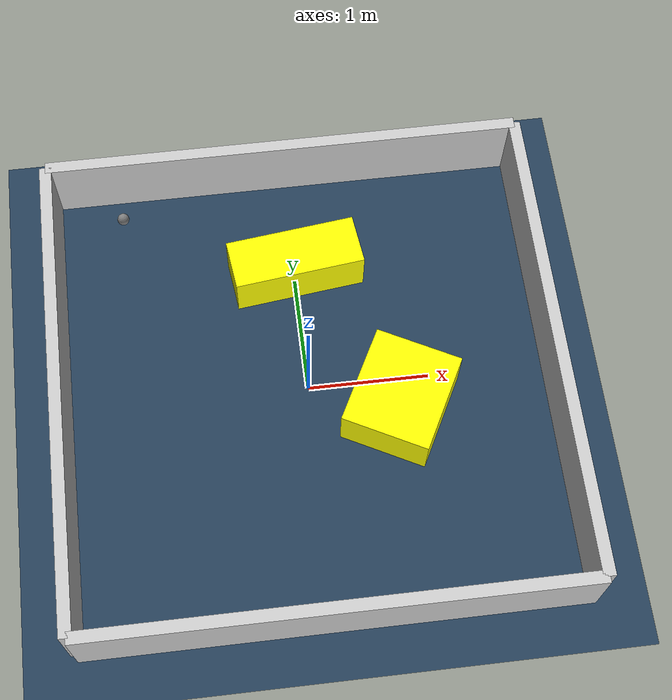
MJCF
<?xml version="1.0" ?>
<mujoco model="generated_environment">
  <option timestep="0.01" integrator="RK4" cone="elliptic"/>
  <default>
    <geom density="1"/>
  </default>
  <asset>
    <texture builtin="gradient" height="3072" rgb1="0.3 0.5 0.7" rgb2="0 0 0" type="skybox" width="512"/>
    <texture builtin="checker" height="300" mark="edge" markrgb="0.8 0.8 0.8" name="groundplane" rgb1="0.2 0.3 0.4" rgb2="0.1 0.2 0.3" type="2d" width="300"/>
    <material name="groundplane" reflectance="0.2" texrepeat="5 5" texture="groundplane" texuniform="true"/>
    <material name="robot" rgba="0.0 1.0 0.0 1"/>
  </asset>
  <worldbody>
    <light dir="0 0 -1" directional="true" pos="0 0 1.5"/>
    <geom condim="4" friction="1.0 0.005 0.001" material="groundplane" name="floor" size="0 0 0.05" type="plane"/>
    <body name="walls">
      <geom name="wall_1" condim="4" pos="-2.0 0.0 0.3" rgba="0.800000011920929 0.800000011920929 0.800000011920929 1.0" size="0.05 2.0 0.3" type="box"/>
      <geom name="wall_2" condim="4" pos="2.0 0.0 0.3" rgba="0.800000011920929 0.800000011920929 0.800000011920929 1.0" size="0.05 2.0 0.3" type="box"/>
      <geom name="wall_3" condim="4" pos="0.0 -2.0 0.3" rgba="0.800000011920929 0.800000011920929 0.800000011920929 1.0" size="2.0 0.05 0.3" type="box"/>
      <geom name="wall_4" condim="4" pos="0.0 2.0 0.3" rgba="0.800000011920929 0.800000011920929 0.800000011920929 1.0" size="2.0 0.05 0.3" type="box"/>
    </body>
    <body name="robot">
      <joint name="joint_x" type="slide" pos="0 0 0" axis="1 0 0"/>
      <joint name="joint_y" type="slide" pos="0 0 0" axis="0 1 0"/>
      <geom name="robot" type="sphere" pos="-1.4094211762331437 1.669641126136554 0.2" size="0.05" mass="5." friction="1.0 0.005 0.0001" condim="4"/>
      <site name="sensor_ball"/>
    </body>
    <body name="obstacle_1_movable">
      <geom name="obstacle_1_movable" condim="4" pos="0.012041623661449119 1.0742915550307168 0.2" euler="0 0 186.96182680761302" friction="1.0 0.005 0.001" rgba="1 1 0 1" size="0.5447362818308319 0.21127125499233768 0.2" type="box" mass="0.1"/>
      <joint type="free"/>
    </body>
    <body name="obstacle_2_movable">
      <geom name="obstacle_2_movable" condim="4" pos="0.7242381764409729 -0.25467198324012674 0.2" euler="0 0 62.347382732257984" friction="1.0 0.005 0.001" rgba="1 1 0 1" size="0.4178626730733137 0.36432670368706876 0.2" type="box" mass="0.1"/>
      <joint type="free"/>
    </body>
  </worldbody>
  <actuator>
    <motor name="actuator_x" joint="joint_x" gear="1" ctrlrange="-1 1"/>
    <motor name="actuator_y" joint="joint_y" gear="1" ctrlrange="-1 1"/>
  </actuator>
</mujoco>
